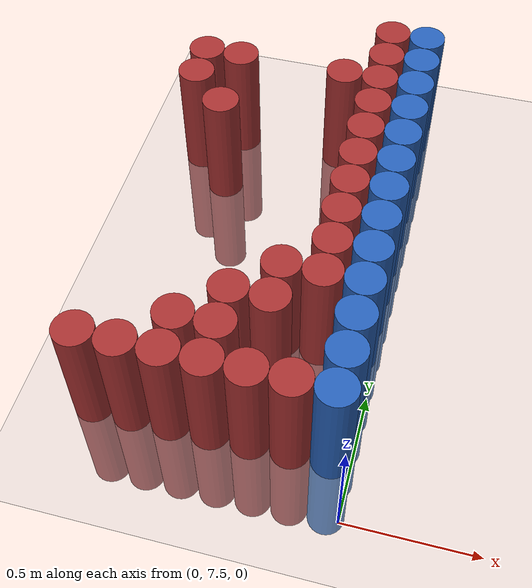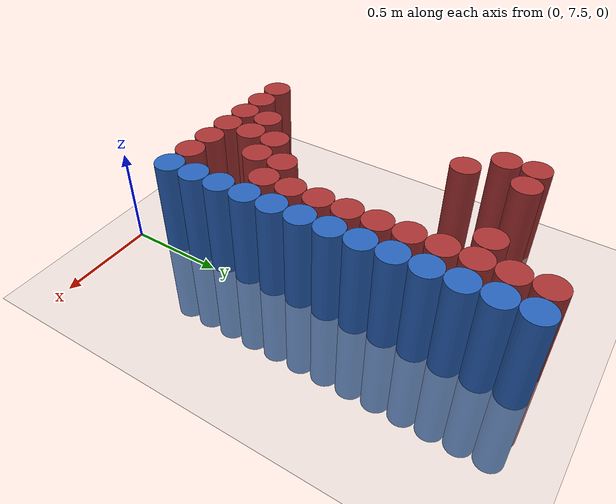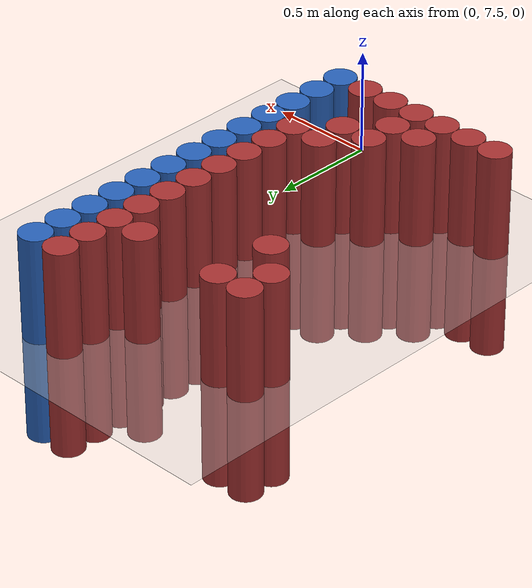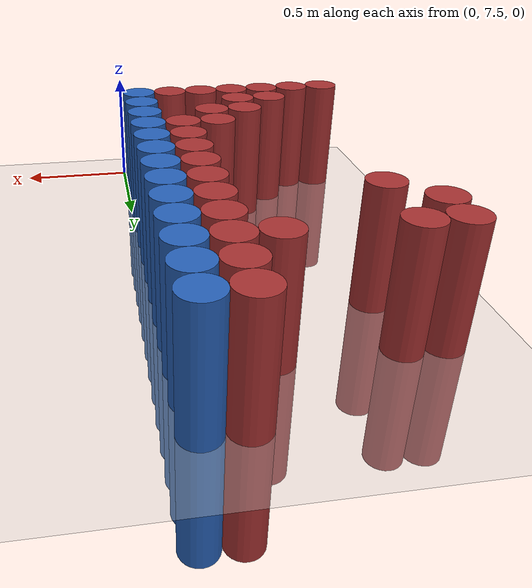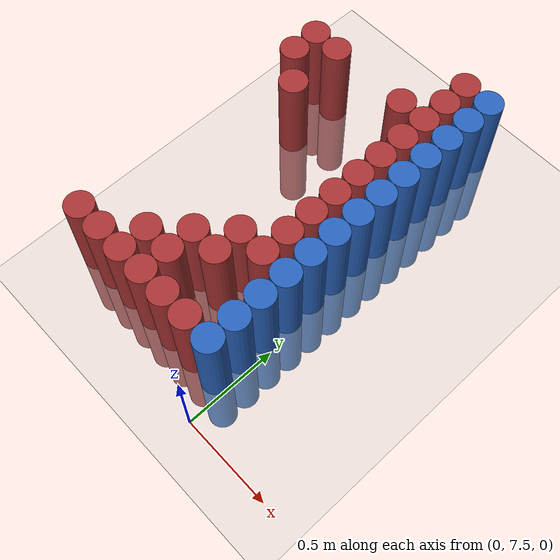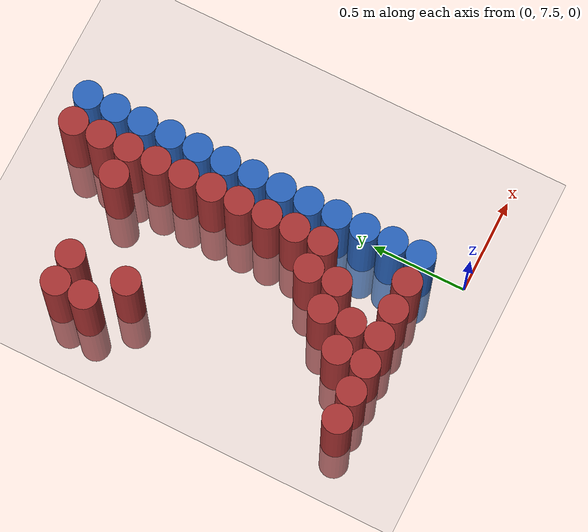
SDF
<sdf version="1.6">
 <world name="default">
  <model name="ground_plane">
   <static>1</static>
   <link name="link">
    <collision name="collision">
     <geometry><plane><normal>0 0 1</normal><size>100 100</size></plane></geometry>
     <surface><friction><ode><mu>100</mu><mu2>50</mu2></ode></friction></surface>
    </collision>
    <visual name="visual">
     <cast_shadows>0</cast_shadows>
     <geometry><plane><normal>0 0 1</normal><size>100 100</size></plane></geometry>
     <material>
      <script><uri>file://media/materials/scripts/gazebo.material</uri><name>Gazebo/Grey</name></script>
     </material>
    </visual>
   </link>
  </model>
  <model name="unit_cylinder_222">
   <static>1</static>
   <pose>-0.975000 7.725000 0.000000 0.000000 0.000000 0.000000</pose>
   <link name="link">
    <inertial>
     <mass>1</mass>
     <inertia><ixx>0.145833</ixx><ixy>0</ixy><ixz>0</ixz><iyy>0.145833</iyy><iyz>0</iyz><izz>0.125</izz></inertia>
    </inertial>
    <collision name="collision">
     <geometry><cylinder><radius>0.075000</radius><length>1</length></cylinder></geometry>
    </collision>
    <visual name="visual">
     <geometry><cylinder><radius>0.075000</radius><length>1</length></cylinder></geometry>
     <material>
      <ambient>0.648000 0.192000 0.192000 1</ambient>
      <diffuse>0.648000 0.192000 0.192000 1</diffuse>
     </material>
     <material>
      <script><name>Gazebo/Grey</name><uri>file://media/materials/scripts/gazebo.material</uri></script>
     </material>
    </visual>
    <sensor name="sensor_contact" type="contact"><contact><collision>collision</collision></contact></sensor>
   </link>
   <plugin filename="gz-sim-touchplugin-system" name="gz::sim::systems::TouchPlugin">
    <target>robot</target>
    <namespace>robot</namespace>
    <time>0.001</time>
    <enabled>true</enabled>
   </plugin>
  </model>
  <model name="unit_cylinder_223">
   <static>1</static>
   <pose>-0.975000 9.075000 0.000000 0.000000 0.000000 0.000000</pose>
   <link name="link">
    <inertial>
     <mass>1</mass>
     <inertia><ixx>0.145833</ixx><ixy>0</ixy><ixz>0</ixz><iyy>0.145833</iyy><iyz>0</iyz><izz>0.125</izz></inertia>
    </inertial>
    <collision name="collision">
     <geometry><cylinder><radius>0.075000</radius><length>1</length></cylinder></geometry>
    </collision>
    <visual name="visual">
     <geometry><cylinder><radius>0.075000</radius><length>1</length></cylinder></geometry>
     <material>
      <ambient>0.648000 0.192000 0.192000 1</ambient>
      <diffuse>0.648000 0.192000 0.192000 1</diffuse>
     </material>
     <material>
      <script><name>Gazebo/Grey</name><uri>file://media/materials/scripts/gazebo.material</uri></script>
     </material>
    </visual>
    <sensor name="sensor_contact" type="contact"><contact><collision>collision</collision></contact></sensor>
   </link>
   <plugin filename="gz-sim-touchplugin-system" name="gz::sim::systems::TouchPlugin">
    <target>robot</target>
    <namespace>robot</namespace>
    <time>0.001</time>
    <enabled>true</enabled>
   </plugin>
  </model>
  <model name="unit_cylinder_224">
   <static>1</static>
   <pose>-0.975000 9.225000 0.000000 0.000000 0.000000 0.000000</pose>
   <link name="link">
    <inertial>
     <mass>1</mass>
     <inertia><ixx>0.145833</ixx><ixy>0</ixy><ixz>0</ixz><iyy>0.145833</iyy><iyz>0</iyz><izz>0.125</izz></inertia>
    </inertial>
    <collision name="collision">
     <geometry><cylinder><radius>0.075000</radius><length>1</length></cylinder></geometry>
    </collision>
    <visual name="visual">
     <geometry><cylinder><radius>0.075000</radius><length>1</length></cylinder></geometry>
     <material>
      <ambient>0.648000 0.192000 0.192000 1</ambient>
      <diffuse>0.648000 0.192000 0.192000 1</diffuse>
     </material>
     <material>
      <script><name>Gazebo/Grey</name><uri>file://media/materials/scripts/gazebo.material</uri></script>
     </material>
    </visual>
    <sensor name="sensor_contact" type="contact"><contact><collision>collision</collision></contact></sensor>
   </link>
   <plugin filename="gz-sim-touchplugin-system" name="gz::sim::systems::TouchPlugin">
    <target>robot</target>
    <namespace>robot</namespace>
    <time>0.001</time>
    <enabled>true</enabled>
   </plugin>
  </model>
  <model name="unit_cylinder_228">
   <static>1</static>
   <pose>-0.825000 7.725000 0.000000 0.000000 0.000000 0.000000</pose>
   <link name="link">
    <inertial>
     <mass>1</mass>
     <inertia><ixx>0.145833</ixx><ixy>0</ixy><ixz>0</ixz><iyy>0.145833</iyy><iyz>0</iyz><izz>0.125</izz></inertia>
    </inertial>
    <collision name="collision">
     <geometry><cylinder><radius>0.075000</radius><length>1</length></cylinder></geometry>
    </collision>
    <visual name="visual">
     <geometry><cylinder><radius>0.075000</radius><length>1</length></cylinder></geometry>
     <material>
      <ambient>0.648000 0.192000 0.192000 1</ambient>
      <diffuse>0.648000 0.192000 0.192000 1</diffuse>
     </material>
     <material>
      <script><name>Gazebo/Grey</name><uri>file://media/materials/scripts/gazebo.material</uri></script>
     </material>
    </visual>
    <sensor name="sensor_contact" type="contact"><contact><collision>collision</collision></contact></sensor>
   </link>
   <plugin filename="gz-sim-touchplugin-system" name="gz::sim::systems::TouchPlugin">
    <target>robot</target>
    <namespace>robot</namespace>
    <time>0.001</time>
    <enabled>true</enabled>
   </plugin>
  </model>
  <model name="unit_cylinder_229">
   <static>1</static>
   <pose>-0.825000 8.925000 0.000000 0.000000 0.000000 0.000000</pose>
   <link name="link">
    <inertial>
     <mass>1</mass>
     <inertia><ixx>0.145833</ixx><ixy>0</ixy><ixz>0</ixz><iyy>0.145833</iyy><iyz>0</iyz><izz>0.125</izz></inertia>
    </inertial>
    <collision name="collision">
     <geometry><cylinder><radius>0.075000</radius><length>1</length></cylinder></geometry>
    </collision>
    <visual name="visual">
     <geometry><cylinder><radius>0.075000</radius><length>1</length></cylinder></geometry>
     <material>
      <ambient>0.648000 0.192000 0.192000 1</ambient>
      <diffuse>0.648000 0.192000 0.192000 1</diffuse>
     </material>
     <material>
      <script><name>Gazebo/Grey</name><uri>file://media/materials/scripts/gazebo.material</uri></script>
     </material>
    </visual>
    <sensor name="sensor_contact" type="contact"><contact><collision>collision</collision></contact></sensor>
   </link>
   <plugin filename="gz-sim-touchplugin-system" name="gz::sim::systems::TouchPlugin">
    <target>robot</target>
    <namespace>robot</namespace>
    <time>0.001</time>
    <enabled>true</enabled>
   </plugin>
  </model>
  <model name="unit_cylinder_230">
   <static>1</static>
   <pose>-0.825000 9.225000 0.000000 0.000000 0.000000 0.000000</pose>
   <link name="link">
    <inertial>
     <mass>1</mass>
     <inertia><ixx>0.145833</ixx><ixy>0</ixy><ixz>0</ixz><iyy>0.145833</iyy><iyz>0</iyz><izz>0.125</izz></inertia>
    </inertial>
    <collision name="collision">
     <geometry><cylinder><radius>0.075000</radius><length>1</length></cylinder></geometry>
    </collision>
    <visual name="visual">
     <geometry><cylinder><radius>0.075000</radius><length>1</length></cylinder></geometry>
     <material>
      <ambient>0.648000 0.192000 0.192000 1</ambient>
      <diffuse>0.648000 0.192000 0.192000 1</diffuse>
     </material>
     <material>
      <script><name>Gazebo/Grey</name><uri>file://media/materials/scripts/gazebo.material</uri></script>
     </material>
    </visual>
    <sensor name="sensor_contact" type="contact"><contact><collision>collision</collision></contact></sensor>
   </link>
   <plugin filename="gz-sim-touchplugin-system" name="gz::sim::systems::TouchPlugin">
    <target>robot</target>
    <namespace>robot</namespace>
    <time>0.001</time>
    <enabled>true</enabled>
   </plugin>
  </model>
  <model name="unit_cylinder_239">
   <static>1</static>
   <pose>-0.675000 7.725000 0.000000 0.000000 0.000000 0.000000</pose>
   <link name="link">
    <inertial>
     <mass>1</mass>
     <inertia><ixx>0.145833</ixx><ixy>0</ixy><ixz>0</ixz><iyy>0.145833</iyy><iyz>0</iyz><izz>0.125</izz></inertia>
    </inertial>
    <collision name="collision">
     <geometry><cylinder><radius>0.075000</radius><length>1</length></cylinder></geometry>
    </collision>
    <visual name="visual">
     <geometry><cylinder><radius>0.075000</radius><length>1</length></cylinder></geometry>
     <material>
      <ambient>0.648000 0.192000 0.192000 1</ambient>
      <diffuse>0.648000 0.192000 0.192000 1</diffuse>
     </material>
     <material>
      <script><name>Gazebo/Grey</name><uri>file://media/materials/scripts/gazebo.material</uri></script>
     </material>
    </visual>
    <sensor name="sensor_contact" type="contact"><contact><collision>collision</collision></contact></sensor>
   </link>
   <plugin filename="gz-sim-touchplugin-system" name="gz::sim::systems::TouchPlugin">
    <target>robot</target>
    <namespace>robot</namespace>
    <time>0.001</time>
    <enabled>true</enabled>
   </plugin>
  </model>
  <model name="unit_cylinder_240">
   <static>1</static>
   <pose>-0.675000 7.875000 0.000000 0.000000 0.000000 0.000000</pose>
   <link name="link">
    <inertial>
     <mass>1</mass>
     <inertia><ixx>0.145833</ixx><ixy>0</ixy><ixz>0</ixz><iyy>0.145833</iyy><iyz>0</iyz><izz>0.125</izz></inertia>
    </inertial>
    <collision name="collision">
     <geometry><cylinder><radius>0.075000</radius><length>1</length></cylinder></geometry>
    </collision>
    <visual name="visual">
     <geometry><cylinder><radius>0.075000</radius><length>1</length></cylinder></geometry>
     <material>
      <ambient>0.648000 0.192000 0.192000 1</ambient>
      <diffuse>0.648000 0.192000 0.192000 1</diffuse>
     </material>
     <material>
      <script><name>Gazebo/Grey</name><uri>file://media/materials/scripts/gazebo.material</uri></script>
     </material>
    </visual>
    <sensor name="sensor_contact" type="contact"><contact><collision>collision</collision></contact></sensor>
   </link>
   <plugin filename="gz-sim-touchplugin-system" name="gz::sim::systems::TouchPlugin">
    <target>robot</target>
    <namespace>robot</namespace>
    <time>0.001</time>
    <enabled>true</enabled>
   </plugin>
  </model>
  <model name="unit_cylinder_248">
   <static>1</static>
   <pose>-0.525000 7.725000 0.000000 0.000000 0.000000 0.000000</pose>
   <link name="link">
    <inertial>
     <mass>1</mass>
     <inertia><ixx>0.145833</ixx><ixy>0</ixy><ixz>0</ixz><iyy>0.145833</iyy><iyz>0</iyz><izz>0.125</izz></inertia>
    </inertial>
    <collision name="collision">
     <geometry><cylinder><radius>0.075000</radius><length>1</length></cylinder></geometry>
    </collision>
    <visual name="visual">
     <geometry><cylinder><radius>0.075000</radius><length>1</length></cylinder></geometry>
     <material>
      <ambient>0.648000 0.192000 0.192000 1</ambient>
      <diffuse>0.648000 0.192000 0.192000 1</diffuse>
     </material>
     <material>
      <script><name>Gazebo/Grey</name><uri>file://media/materials/scripts/gazebo.material</uri></script>
     </material>
    </visual>
    <sensor name="sensor_contact" type="contact"><contact><collision>collision</collision></contact></sensor>
   </link>
   <plugin filename="gz-sim-touchplugin-system" name="gz::sim::systems::TouchPlugin">
    <target>robot</target>
    <namespace>robot</namespace>
    <time>0.001</time>
    <enabled>true</enabled>
   </plugin>
  </model>
  <model name="unit_cylinder_249">
   <static>1</static>
   <pose>-0.525000 7.875000 0.000000 0.000000 0.000000 0.000000</pose>
   <link name="link">
    <inertial>
     <mass>1</mass>
     <inertia><ixx>0.145833</ixx><ixy>0</ixy><ixz>0</ixz><iyy>0.145833</iyy><iyz>0</iyz><izz>0.125</izz></inertia>
    </inertial>
    <collision name="collision">
     <geometry><cylinder><radius>0.075000</radius><length>1</length></cylinder></geometry>
    </collision>
    <visual name="visual">
     <geometry><cylinder><radius>0.075000</radius><length>1</length></cylinder></geometry>
     <material>
      <ambient>0.648000 0.192000 0.192000 1</ambient>
      <diffuse>0.648000 0.192000 0.192000 1</diffuse>
     </material>
     <material>
      <script><name>Gazebo/Grey</name><uri>file://media/materials/scripts/gazebo.material</uri></script>
     </material>
    </visual>
    <sensor name="sensor_contact" type="contact"><contact><collision>collision</collision></contact></sensor>
   </link>
   <plugin filename="gz-sim-touchplugin-system" name="gz::sim::systems::TouchPlugin">
    <target>robot</target>
    <namespace>robot</namespace>
    <time>0.001</time>
    <enabled>true</enabled>
   </plugin>
  </model>
  <model name="unit_cylinder_250">
   <static>1</static>
   <pose>-0.525000 8.025000 0.000000 0.000000 0.000000 0.000000</pose>
   <link name="link">
    <inertial>
     <mass>1</mass>
     <inertia><ixx>0.145833</ixx><ixy>0</ixy><ixz>0</ixz><iyy>0.145833</iyy><iyz>0</iyz><izz>0.125</izz></inertia>
    </inertial>
    <collision name="collision">
     <geometry><cylinder><radius>0.075000</radius><length>1</length></cylinder></geometry>
    </collision>
    <visual name="visual">
     <geometry><cylinder><radius>0.075000</radius><length>1</length></cylinder></geometry>
     <material>
      <ambient>0.648000 0.192000 0.192000 1</ambient>
      <diffuse>0.648000 0.192000 0.192000 1</diffuse>
     </material>
     <material>
      <script><name>Gazebo/Grey</name><uri>file://media/materials/scripts/gazebo.material</uri></script>
     </material>
    </visual>
    <sensor name="sensor_contact" type="contact"><contact><collision>collision</collision></contact></sensor>
   </link>
   <plugin filename="gz-sim-touchplugin-system" name="gz::sim::systems::TouchPlugin">
    <target>robot</target>
    <namespace>robot</namespace>
    <time>0.001</time>
    <enabled>true</enabled>
   </plugin>
  </model>
  <model name="unit_cylinder_256">
   <static>1</static>
   <pose>-0.375000 7.725000 0.000000 0.000000 0.000000 0.000000</pose>
   <link name="link">
    <inertial>
     <mass>1</mass>
     <inertia><ixx>0.145833</ixx><ixy>0</ixy><ixz>0</ixz><iyy>0.145833</iyy><iyz>0</iyz><izz>0.125</izz></inertia>
    </inertial>
    <collision name="collision">
     <geometry><cylinder><radius>0.075000</radius><length>1</length></cylinder></geometry>
    </collision>
    <visual name="visual">
     <geometry><cylinder><radius>0.075000</radius><length>1</length></cylinder></geometry>
     <material>
      <ambient>0.648000 0.192000 0.192000 1</ambient>
      <diffuse>0.648000 0.192000 0.192000 1</diffuse>
     </material>
     <material>
      <script><name>Gazebo/Grey</name><uri>file://media/materials/scripts/gazebo.material</uri></script>
     </material>
    </visual>
    <sensor name="sensor_contact" type="contact"><contact><collision>collision</collision></contact></sensor>
   </link>
   <plugin filename="gz-sim-touchplugin-system" name="gz::sim::systems::TouchPlugin">
    <target>robot</target>
    <namespace>robot</namespace>
    <time>0.001</time>
    <enabled>true</enabled>
   </plugin>
  </model>
  <model name="unit_cylinder_257">
   <static>1</static>
   <pose>-0.375000 8.025000 0.000000 0.000000 0.000000 0.000000</pose>
   <link name="link">
    <inertial>
     <mass>1</mass>
     <inertia><ixx>0.145833</ixx><ixy>0</ixy><ixz>0</ixz><iyy>0.145833</iyy><iyz>0</iyz><izz>0.125</izz></inertia>
    </inertial>
    <collision name="collision">
     <geometry><cylinder><radius>0.075000</radius><length>1</length></cylinder></geometry>
    </collision>
    <visual name="visual">
     <geometry><cylinder><radius>0.075000</radius><length>1</length></cylinder></geometry>
     <material>
      <ambient>0.648000 0.192000 0.192000 1</ambient>
      <diffuse>0.648000 0.192000 0.192000 1</diffuse>
     </material>
     <material>
      <script><name>Gazebo/Grey</name><uri>file://media/materials/scripts/gazebo.material</uri></script>
     </material>
    </visual>
    <sensor name="sensor_contact" type="contact"><contact><collision>collision</collision></contact></sensor>
   </link>
   <plugin filename="gz-sim-touchplugin-system" name="gz::sim::systems::TouchPlugin">
    <target>robot</target>
    <namespace>robot</namespace>
    <time>0.001</time>
    <enabled>true</enabled>
   </plugin>
  </model>
  <model name="unit_cylinder_258">
   <static>1</static>
   <pose>-0.375000 8.175000 0.000000 0.000000 0.000000 0.000000</pose>
   <link name="link">
    <inertial>
     <mass>1</mass>
     <inertia><ixx>0.145833</ixx><ixy>0</ixy><ixz>0</ixz><iyy>0.145833</iyy><iyz>0</iyz><izz>0.125</izz></inertia>
    </inertial>
    <collision name="collision">
     <geometry><cylinder><radius>0.075000</radius><length>1</length></cylinder></geometry>
    </collision>
    <visual name="visual">
     <geometry><cylinder><radius>0.075000</radius><length>1</length></cylinder></geometry>
     <material>
      <ambient>0.648000 0.192000 0.192000 1</ambient>
      <diffuse>0.648000 0.192000 0.192000 1</diffuse>
     </material>
     <material>
      <script><name>Gazebo/Grey</name><uri>file://media/materials/scripts/gazebo.material</uri></script>
     </material>
    </visual>
    <sensor name="sensor_contact" type="contact"><contact><collision>collision</collision></contact></sensor>
   </link>
   <plugin filename="gz-sim-touchplugin-system" name="gz::sim::systems::TouchPlugin">
    <target>robot</target>
    <namespace>robot</namespace>
    <time>0.001</time>
    <enabled>true</enabled>
   </plugin>
  </model>
  <model name="unit_cylinder_259">
   <static>1</static>
   <pose>-0.375000 9.225000 0.000000 0.000000 0.000000 0.000000</pose>
   <link name="link">
    <inertial>
     <mass>1</mass>
     <inertia><ixx>0.145833</ixx><ixy>0</ixy><ixz>0</ixz><iyy>0.145833</iyy><iyz>0</iyz><izz>0.125</izz></inertia>
    </inertial>
    <collision name="collision">
     <geometry><cylinder><radius>0.075000</radius><length>1</length></cylinder></geometry>
    </collision>
    <visual name="visual">
     <geometry><cylinder><radius>0.075000</radius><length>1</length></cylinder></geometry>
     <material>
      <ambient>0.648000 0.192000 0.192000 1</ambient>
      <diffuse>0.648000 0.192000 0.192000 1</diffuse>
     </material>
     <material>
      <script><name>Gazebo/Grey</name><uri>file://media/materials/scripts/gazebo.material</uri></script>
     </material>
    </visual>
    <sensor name="sensor_contact" type="contact"><contact><collision>collision</collision></contact></sensor>
   </link>
   <plugin filename="gz-sim-touchplugin-system" name="gz::sim::systems::TouchPlugin">
    <target>robot</target>
    <namespace>robot</namespace>
    <time>0.001</time>
    <enabled>true</enabled>
   </plugin>
  </model>
  <model name="unit_cylinder_269">
   <static>1</static>
   <pose>-0.225000 7.725000 0.000000 0.000000 0.000000 0.000000</pose>
   <link name="link">
    <inertial>
     <mass>1</mass>
     <inertia><ixx>0.145833</ixx><ixy>0</ixy><ixz>0</ixz><iyy>0.145833</iyy><iyz>0</iyz><izz>0.125</izz></inertia>
    </inertial>
    <collision name="collision">
     <geometry><cylinder><radius>0.075000</radius><length>1</length></cylinder></geometry>
    </collision>
    <visual name="visual">
     <geometry><cylinder><radius>0.075000</radius><length>1</length></cylinder></geometry>
     <material>
      <ambient>0.648000 0.192000 0.192000 1</ambient>
      <diffuse>0.648000 0.192000 0.192000 1</diffuse>
     </material>
     <material>
      <script><name>Gazebo/Grey</name><uri>file://media/materials/scripts/gazebo.material</uri></script>
     </material>
    </visual>
    <sensor name="sensor_contact" type="contact"><contact><collision>collision</collision></contact></sensor>
   </link>
   <plugin filename="gz-sim-touchplugin-system" name="gz::sim::systems::TouchPlugin">
    <target>robot</target>
    <namespace>robot</namespace>
    <time>0.001</time>
    <enabled>true</enabled>
   </plugin>
  </model>
  <model name="unit_cylinder_270">
   <static>1</static>
   <pose>-0.225000 8.175000 0.000000 0.000000 0.000000 0.000000</pose>
   <link name="link">
    <inertial>
     <mass>1</mass>
     <inertia><ixx>0.145833</ixx><ixy>0</ixy><ixz>0</ixz><iyy>0.145833</iyy><iyz>0</iyz><izz>0.125</izz></inertia>
    </inertial>
    <collision name="collision">
     <geometry><cylinder><radius>0.075000</radius><length>1</length></cylinder></geometry>
    </collision>
    <visual name="visual">
     <geometry><cylinder><radius>0.075000</radius><length>1</length></cylinder></geometry>
     <material>
      <ambient>0.648000 0.192000 0.192000 1</ambient>
      <diffuse>0.648000 0.192000 0.192000 1</diffuse>
     </material>
     <material>
      <script><name>Gazebo/Grey</name><uri>file://media/materials/scripts/gazebo.material</uri></script>
     </material>
    </visual>
    <sensor name="sensor_contact" type="contact"><contact><collision>collision</collision></contact></sensor>
   </link>
   <plugin filename="gz-sim-touchplugin-system" name="gz::sim::systems::TouchPlugin">
    <target>robot</target>
    <namespace>robot</namespace>
    <time>0.001</time>
    <enabled>true</enabled>
   </plugin>
  </model>
  <model name="unit_cylinder_271">
   <static>1</static>
   <pose>-0.225000 8.325000 0.000000 0.000000 0.000000 0.000000</pose>
   <link name="link">
    <inertial>
     <mass>1</mass>
     <inertia><ixx>0.145833</ixx><ixy>0</ixy><ixz>0</ixz><iyy>0.145833</iyy><iyz>0</iyz><izz>0.125</izz></inertia>
    </inertial>
    <collision name="collision">
     <geometry><cylinder><radius>0.075000</radius><length>1</length></cylinder></geometry>
    </collision>
    <visual name="visual">
     <geometry><cylinder><radius>0.075000</radius><length>1</length></cylinder></geometry>
     <material>
      <ambient>0.648000 0.192000 0.192000 1</ambient>
      <diffuse>0.648000 0.192000 0.192000 1</diffuse>
     </material>
     <material>
      <script><name>Gazebo/Grey</name><uri>file://media/materials/scripts/gazebo.material</uri></script>
     </material>
    </visual>
    <sensor name="sensor_contact" type="contact"><contact><collision>collision</collision></contact></sensor>
   </link>
   <plugin filename="gz-sim-touchplugin-system" name="gz::sim::systems::TouchPlugin">
    <target>robot</target>
    <namespace>robot</namespace>
    <time>0.001</time>
    <enabled>true</enabled>
   </plugin>
  </model>
  <model name="unit_cylinder_272">
   <static>1</static>
   <pose>-0.225000 8.475000 0.000000 0.000000 0.000000 0.000000</pose>
   <link name="link">
    <inertial>
     <mass>1</mass>
     <inertia><ixx>0.145833</ixx><ixy>0</ixy><ixz>0</ixz><iyy>0.145833</iyy><iyz>0</iyz><izz>0.125</izz></inertia>
    </inertial>
    <collision name="collision">
     <geometry><cylinder><radius>0.075000</radius><length>1</length></cylinder></geometry>
    </collision>
    <visual name="visual">
     <geometry><cylinder><radius>0.075000</radius><length>1</length></cylinder></geometry>
     <material>
      <ambient>0.648000 0.192000 0.192000 1</ambient>
      <diffuse>0.648000 0.192000 0.192000 1</diffuse>
     </material>
     <material>
      <script><name>Gazebo/Grey</name><uri>file://media/materials/scripts/gazebo.material</uri></script>
     </material>
    </visual>
    <sensor name="sensor_contact" type="contact"><contact><collision>collision</collision></contact></sensor>
   </link>
   <plugin filename="gz-sim-touchplugin-system" name="gz::sim::systems::TouchPlugin">
    <target>robot</target>
    <namespace>robot</namespace>
    <time>0.001</time>
    <enabled>true</enabled>
   </plugin>
  </model>
  <model name="unit_cylinder_273">
   <static>1</static>
   <pose>-0.225000 8.625000 0.000000 0.000000 0.000000 0.000000</pose>
   <link name="link">
    <inertial>
     <mass>1</mass>
     <inertia><ixx>0.145833</ixx><ixy>0</ixy><ixz>0</ixz><iyy>0.145833</iyy><iyz>0</iyz><izz>0.125</izz></inertia>
    </inertial>
    <collision name="collision">
     <geometry><cylinder><radius>0.075000</radius><length>1</length></cylinder></geometry>
    </collision>
    <visual name="visual">
     <geometry><cylinder><radius>0.075000</radius><length>1</length></cylinder></geometry>
     <material>
      <ambient>0.648000 0.192000 0.192000 1</ambient>
      <diffuse>0.648000 0.192000 0.192000 1</diffuse>
     </material>
     <material>
      <script><name>Gazebo/Grey</name><uri>file://media/materials/scripts/gazebo.material</uri></script>
     </material>
    </visual>
    <sensor name="sensor_contact" type="contact"><contact><collision>collision</collision></contact></sensor>
   </link>
   <plugin filename="gz-sim-touchplugin-system" name="gz::sim::systems::TouchPlugin">
    <target>robot</target>
    <namespace>robot</namespace>
    <time>0.001</time>
    <enabled>true</enabled>
   </plugin>
  </model>
  <model name="unit_cylinder_274">
   <static>1</static>
   <pose>-0.225000 8.775000 0.000000 0.000000 0.000000 0.000000</pose>
   <link name="link">
    <inertial>
     <mass>1</mass>
     <inertia><ixx>0.145833</ixx><ixy>0</ixy><ixz>0</ixz><iyy>0.145833</iyy><iyz>0</iyz><izz>0.125</izz></inertia>
    </inertial>
    <collision name="collision">
     <geometry><cylinder><radius>0.075000</radius><length>1</length></cylinder></geometry>
    </collision>
    <visual name="visual">
     <geometry><cylinder><radius>0.075000</radius><length>1</length></cylinder></geometry>
     <material>
      <ambient>0.648000 0.192000 0.192000 1</ambient>
      <diffuse>0.648000 0.192000 0.192000 1</diffuse>
     </material>
     <material>
      <script><name>Gazebo/Grey</name><uri>file://media/materials/scripts/gazebo.material</uri></script>
     </material>
    </visual>
    <sensor name="sensor_contact" type="contact"><contact><collision>collision</collision></contact></sensor>
   </link>
   <plugin filename="gz-sim-touchplugin-system" name="gz::sim::systems::TouchPlugin">
    <target>robot</target>
    <namespace>robot</namespace>
    <time>0.001</time>
    <enabled>true</enabled>
   </plugin>
  </model>
  <model name="unit_cylinder_275">
   <static>1</static>
   <pose>-0.225000 8.925000 0.000000 0.000000 0.000000 0.000000</pose>
   <link name="link">
    <inertial>
     <mass>1</mass>
     <inertia><ixx>0.145833</ixx><ixy>0</ixy><ixz>0</ixz><iyy>0.145833</iyy><iyz>0</iyz><izz>0.125</izz></inertia>
    </inertial>
    <collision name="collision">
     <geometry><cylinder><radius>0.075000</radius><length>1</length></cylinder></geometry>
    </collision>
    <visual name="visual">
     <geometry><cylinder><radius>0.075000</radius><length>1</length></cylinder></geometry>
     <material>
      <ambient>0.648000 0.192000 0.192000 1</ambient>
      <diffuse>0.648000 0.192000 0.192000 1</diffuse>
     </material>
     <material>
      <script><name>Gazebo/Grey</name><uri>file://media/materials/scripts/gazebo.material</uri></script>
     </material>
    </visual>
    <sensor name="sensor_contact" type="contact"><contact><collision>collision</collision></contact></sensor>
   </link>
   <plugin filename="gz-sim-touchplugin-system" name="gz::sim::systems::TouchPlugin">
    <target>robot</target>
    <namespace>robot</namespace>
    <time>0.001</time>
    <enabled>true</enabled>
   </plugin>
  </model>
  <model name="unit_cylinder_276">
   <static>1</static>
   <pose>-0.225000 9.075000 0.000000 0.000000 0.000000 0.000000</pose>
   <link name="link">
    <inertial>
     <mass>1</mass>
     <inertia><ixx>0.145833</ixx><ixy>0</ixy><ixz>0</ixz><iyy>0.145833</iyy><iyz>0</iyz><izz>0.125</izz></inertia>
    </inertial>
    <collision name="collision">
     <geometry><cylinder><radius>0.075000</radius><length>1</length></cylinder></geometry>
    </collision>
    <visual name="visual">
     <geometry><cylinder><radius>0.075000</radius><length>1</length></cylinder></geometry>
     <material>
      <ambient>0.648000 0.192000 0.192000 1</ambient>
      <diffuse>0.648000 0.192000 0.192000 1</diffuse>
     </material>
     <material>
      <script><name>Gazebo/Grey</name><uri>file://media/materials/scripts/gazebo.material</uri></script>
     </material>
    </visual>
    <sensor name="sensor_contact" type="contact"><contact><collision>collision</collision></contact></sensor>
   </link>
   <plugin filename="gz-sim-touchplugin-system" name="gz::sim::systems::TouchPlugin">
    <target>robot</target>
    <namespace>robot</namespace>
    <time>0.001</time>
    <enabled>true</enabled>
   </plugin>
  </model>
  <model name="unit_cylinder_277">
   <static>1</static>
   <pose>-0.225000 9.225000 0.000000 0.000000 0.000000 0.000000</pose>
   <link name="link">
    <inertial>
     <mass>1</mass>
     <inertia><ixx>0.145833</ixx><ixy>0</ixy><ixz>0</ixz><iyy>0.145833</iyy><iyz>0</iyz><izz>0.125</izz></inertia>
    </inertial>
    <collision name="collision">
     <geometry><cylinder><radius>0.075000</radius><length>1</length></cylinder></geometry>
    </collision>
    <visual name="visual">
     <geometry><cylinder><radius>0.075000</radius><length>1</length></cylinder></geometry>
     <material>
      <ambient>0.648000 0.192000 0.192000 1</ambient>
      <diffuse>0.648000 0.192000 0.192000 1</diffuse>
     </material>
     <material>
      <script><name>Gazebo/Grey</name><uri>file://media/materials/scripts/gazebo.material</uri></script>
     </material>
    </visual>
    <sensor name="sensor_contact" type="contact"><contact><collision>collision</collision></contact></sensor>
   </link>
   <plugin filename="gz-sim-touchplugin-system" name="gz::sim::systems::TouchPlugin">
    <target>robot</target>
    <namespace>robot</namespace>
    <time>0.001</time>
    <enabled>true</enabled>
   </plugin>
  </model>
  <model name="unit_cylinder_278">
   <static>1</static>
   <pose>-0.225000 9.375000 0.000000 0.000000 0.000000 0.000000</pose>
   <link name="link">
    <inertial>
     <mass>1</mass>
     <inertia><ixx>0.145833</ixx><ixy>0</ixy><ixz>0</ixz><iyy>0.145833</iyy><iyz>0</iyz><izz>0.125</izz></inertia>
    </inertial>
    <collision name="collision">
     <geometry><cylinder><radius>0.075000</radius><length>1</length></cylinder></geometry>
    </collision>
    <visual name="visual">
     <geometry><cylinder><radius>0.075000</radius><length>1</length></cylinder></geometry>
     <material>
      <ambient>0.648000 0.192000 0.192000 1</ambient>
      <diffuse>0.648000 0.192000 0.192000 1</diffuse>
     </material>
     <material>
      <script><name>Gazebo/Grey</name><uri>file://media/materials/scripts/gazebo.material</uri></script>
     </material>
    </visual>
    <sensor name="sensor_contact" type="contact"><contact><collision>collision</collision></contact></sensor>
   </link>
   <plugin filename="gz-sim-touchplugin-system" name="gz::sim::systems::TouchPlugin">
    <target>robot</target>
    <namespace>robot</namespace>
    <time>0.001</time>
    <enabled>true</enabled>
   </plugin>
  </model>
  <model name="unit_cylinder_279">
   <static>1</static>
   <pose>-0.225000 9.525000 0.000000 0.000000 0.000000 0.000000</pose>
   <link name="link">
    <inertial>
     <mass>1</mass>
     <inertia><ixx>0.145833</ixx><ixy>0</ixy><ixz>0</ixz><iyy>0.145833</iyy><iyz>0</iyz><izz>0.125</izz></inertia>
    </inertial>
    <collision name="collision">
     <geometry><cylinder><radius>0.075000</radius><length>1</length></cylinder></geometry>
    </collision>
    <visual name="visual">
     <geometry><cylinder><radius>0.075000</radius><length>1</length></cylinder></geometry>
     <material>
      <ambient>0.648000 0.192000 0.192000 1</ambient>
      <diffuse>0.648000 0.192000 0.192000 1</diffuse>
     </material>
     <material>
      <script><name>Gazebo/Grey</name><uri>file://media/materials/scripts/gazebo.material</uri></script>
     </material>
    </visual>
    <sensor name="sensor_contact" type="contact"><contact><collision>collision</collision></contact></sensor>
   </link>
   <plugin filename="gz-sim-touchplugin-system" name="gz::sim::systems::TouchPlugin">
    <target>robot</target>
    <namespace>robot</namespace>
    <time>0.001</time>
    <enabled>true</enabled>
   </plugin>
  </model>
  <model name="unit_cylinder_297">
   <static>1</static>
   <pose>-0.075000 7.725000 0.000000 0.000000 0.000000 0.000000</pose>
   <link name="link">
    <inertial>
     <mass>1</mass>
     <inertia><ixx>0.145833</ixx><ixy>0</ixy><ixz>0</ixz><iyy>0.145833</iyy><iyz>0</iyz><izz>0.125</izz></inertia>
    </inertial>
    <collision name="collision">
     <geometry><cylinder><radius>0.075000</radius><length>1</length></cylinder></geometry>
    </collision>
    <visual name="visual">
     <geometry><cylinder><radius>0.075000</radius><length>1</length></cylinder></geometry>
     <material>
      <ambient>0.152000 0.379000 0.720000 1</ambient>
      <diffuse>0.152000 0.379000 0.720000 1</diffuse>
     </material>
     <material>
      <script><name>Gazebo/Grey</name><uri>file://media/materials/scripts/gazebo.material</uri></script>
     </material>
    </visual>
    <sensor name="sensor_contact" type="contact"><contact><collision>collision</collision></contact></sensor>
   </link>
   <plugin filename="gz-sim-touchplugin-system" name="gz::sim::systems::TouchPlugin">
    <target>robot</target>
    <namespace>robot</namespace>
    <time>0.001</time>
    <enabled>true</enabled>
   </plugin>
  </model>
  <model name="unit_cylinder_298">
   <static>1</static>
   <pose>-0.075000 7.875000 0.000000 0.000000 0.000000 0.000000</pose>
   <link name="link">
    <inertial>
     <mass>1</mass>
     <inertia><ixx>0.145833</ixx><ixy>0</ixy><ixz>0</ixz><iyy>0.145833</iyy><iyz>0</iyz><izz>0.125</izz></inertia>
    </inertial>
    <collision name="collision">
     <geometry><cylinder><radius>0.075000</radius><length>1</length></cylinder></geometry>
    </collision>
    <visual name="visual">
     <geometry><cylinder><radius>0.075000</radius><length>1</length></cylinder></geometry>
     <material>
      <ambient>0.152000 0.379000 0.720000 1</ambient>
      <diffuse>0.152000 0.379000 0.720000 1</diffuse>
     </material>
     <material>
      <script><name>Gazebo/Grey</name><uri>file://media/materials/scripts/gazebo.material</uri></script>
     </material>
    </visual>
    <sensor name="sensor_contact" type="contact"><contact><collision>collision</collision></contact></sensor>
   </link>
   <plugin filename="gz-sim-touchplugin-system" name="gz::sim::systems::TouchPlugin">
    <target>robot</target>
    <namespace>robot</namespace>
    <time>0.001</time>
    <enabled>true</enabled>
   </plugin>
  </model>
  <model name="unit_cylinder_299">
   <static>1</static>
   <pose>-0.075000 8.025000 0.000000 0.000000 0.000000 0.000000</pose>
   <link name="link">
    <inertial>
     <mass>1</mass>
     <inertia><ixx>0.145833</ixx><ixy>0</ixy><ixz>0</ixz><iyy>0.145833</iyy><iyz>0</iyz><izz>0.125</izz></inertia>
    </inertial>
    <collision name="collision">
     <geometry><cylinder><radius>0.075000</radius><length>1</length></cylinder></geometry>
    </collision>
    <visual name="visual">
     <geometry><cylinder><radius>0.075000</radius><length>1</length></cylinder></geometry>
     <material>
      <ambient>0.152000 0.379000 0.720000 1</ambient>
      <diffuse>0.152000 0.379000 0.720000 1</diffuse>
     </material>
     <material>
      <script><name>Gazebo/Grey</name><uri>file://media/materials/scripts/gazebo.material</uri></script>
     </material>
    </visual>
    <sensor name="sensor_contact" type="contact"><contact><collision>collision</collision></contact></sensor>
   </link>
   <plugin filename="gz-sim-touchplugin-system" name="gz::sim::systems::TouchPlugin">
    <target>robot</target>
    <namespace>robot</namespace>
    <time>0.001</time>
    <enabled>true</enabled>
   </plugin>
  </model>
  <model name="unit_cylinder_300">
   <static>1</static>
   <pose>-0.075000 8.175000 0.000000 0.000000 0.000000 0.000000</pose>
   <link name="link">
    <inertial>
     <mass>1</mass>
     <inertia><ixx>0.145833</ixx><ixy>0</ixy><ixz>0</ixz><iyy>0.145833</iyy><iyz>0</iyz><izz>0.125</izz></inertia>
    </inertial>
    <collision name="collision">
     <geometry><cylinder><radius>0.075000</radius><length>1</length></cylinder></geometry>
    </collision>
    <visual name="visual">
     <geometry><cylinder><radius>0.075000</radius><length>1</length></cylinder></geometry>
     <material>
      <ambient>0.152000 0.379000 0.720000 1</ambient>
      <diffuse>0.152000 0.379000 0.720000 1</diffuse>
     </material>
     <material>
      <script><name>Gazebo/Grey</name><uri>file://media/materials/scripts/gazebo.material</uri></script>
     </material>
    </visual>
    <sensor name="sensor_contact" type="contact"><contact><collision>collision</collision></contact></sensor>
   </link>
   <plugin filename="gz-sim-touchplugin-system" name="gz::sim::systems::TouchPlugin">
    <target>robot</target>
    <namespace>robot</namespace>
    <time>0.001</time>
    <enabled>true</enabled>
   </plugin>
  </model>
  <model name="unit_cylinder_301">
   <static>1</static>
   <pose>-0.075000 8.325000 0.000000 0.000000 0.000000 0.000000</pose>
   <link name="link">
    <inertial>
     <mass>1</mass>
     <inertia><ixx>0.145833</ixx><ixy>0</ixy><ixz>0</ixz><iyy>0.145833</iyy><iyz>0</iyz><izz>0.125</izz></inertia>
    </inertial>
    <collision name="collision">
     <geometry><cylinder><radius>0.075000</radius><length>1</length></cylinder></geometry>
    </collision>
    <visual name="visual">
     <geometry><cylinder><radius>0.075000</radius><length>1</length></cylinder></geometry>
     <material>
      <ambient>0.152000 0.379000 0.720000 1</ambient>
      <diffuse>0.152000 0.379000 0.720000 1</diffuse>
     </material>
     <material>
      <script><name>Gazebo/Grey</name><uri>file://media/materials/scripts/gazebo.material</uri></script>
     </material>
    </visual>
    <sensor name="sensor_contact" type="contact"><contact><collision>collision</collision></contact></sensor>
   </link>
   <plugin filename="gz-sim-touchplugin-system" name="gz::sim::systems::TouchPlugin">
    <target>robot</target>
    <namespace>robot</namespace>
    <time>0.001</time>
    <enabled>true</enabled>
   </plugin>
  </model>
  <model name="unit_cylinder_302">
   <static>1</static>
   <pose>-0.075000 8.475000 0.000000 0.000000 0.000000 0.000000</pose>
   <link name="link">
    <inertial>
     <mass>1</mass>
     <inertia><ixx>0.145833</ixx><ixy>0</ixy><ixz>0</ixz><iyy>0.145833</iyy><iyz>0</iyz><izz>0.125</izz></inertia>
    </inertial>
    <collision name="collision">
     <geometry><cylinder><radius>0.075000</radius><length>1</length></cylinder></geometry>
    </collision>
    <visual name="visual">
     <geometry><cylinder><radius>0.075000</radius><length>1</length></cylinder></geometry>
     <material>
      <ambient>0.152000 0.379000 0.720000 1</ambient>
      <diffuse>0.152000 0.379000 0.720000 1</diffuse>
     </material>
     <material>
      <script><name>Gazebo/Grey</name><uri>file://media/materials/scripts/gazebo.material</uri></script>
     </material>
    </visual>
    <sensor name="sensor_contact" type="contact"><contact><collision>collision</collision></contact></sensor>
   </link>
   <plugin filename="gz-sim-touchplugin-system" name="gz::sim::systems::TouchPlugin">
    <target>robot</target>
    <namespace>robot</namespace>
    <time>0.001</time>
    <enabled>true</enabled>
   </plugin>
  </model>
  <model name="unit_cylinder_303">
   <static>1</static>
   <pose>-0.075000 8.625000 0.000000 0.000000 0.000000 0.000000</pose>
   <link name="link">
    <inertial>
     <mass>1</mass>
     <inertia><ixx>0.145833</ixx><ixy>0</ixy><ixz>0</ixz><iyy>0.145833</iyy><iyz>0</iyz><izz>0.125</izz></inertia>
    </inertial>
    <collision name="collision">
     <geometry><cylinder><radius>0.075000</radius><length>1</length></cylinder></geometry>
    </collision>
    <visual name="visual">
     <geometry><cylinder><radius>0.075000</radius><length>1</length></cylinder></geometry>
     <material>
      <ambient>0.152000 0.379000 0.720000 1</ambient>
      <diffuse>0.152000 0.379000 0.720000 1</diffuse>
     </material>
     <material>
      <script><name>Gazebo/Grey</name><uri>file://media/materials/scripts/gazebo.material</uri></script>
     </material>
    </visual>
    <sensor name="sensor_contact" type="contact"><contact><collision>collision</collision></contact></sensor>
   </link>
   <plugin filename="gz-sim-touchplugin-system" name="gz::sim::systems::TouchPlugin">
    <target>robot</target>
    <namespace>robot</namespace>
    <time>0.001</time>
    <enabled>true</enabled>
   </plugin>
  </model>
  <model name="unit_cylinder_304">
   <static>1</static>
   <pose>-0.075000 8.775000 0.000000 0.000000 0.000000 0.000000</pose>
   <link name="link">
    <inertial>
     <mass>1</mass>
     <inertia><ixx>0.145833</ixx><ixy>0</ixy><ixz>0</ixz><iyy>0.145833</iyy><iyz>0</iyz><izz>0.125</izz></inertia>
    </inertial>
    <collision name="collision">
     <geometry><cylinder><radius>0.075000</radius><length>1</length></cylinder></geometry>
    </collision>
    <visual name="visual">
     <geometry><cylinder><radius>0.075000</radius><length>1</length></cylinder></geometry>
     <material>
      <ambient>0.152000 0.379000 0.720000 1</ambient>
      <diffuse>0.152000 0.379000 0.720000 1</diffuse>
     </material>
     <material>
      <script><name>Gazebo/Grey</name><uri>file://media/materials/scripts/gazebo.material</uri></script>
     </material>
    </visual>
    <sensor name="sensor_contact" type="contact"><contact><collision>collision</collision></contact></sensor>
   </link>
   <plugin filename="gz-sim-touchplugin-system" name="gz::sim::systems::TouchPlugin">
    <target>robot</target>
    <namespace>robot</namespace>
    <time>0.001</time>
    <enabled>true</enabled>
   </plugin>
  </model>
  <model name="unit_cylinder_305">
   <static>1</static>
   <pose>-0.075000 8.925000 0.000000 0.000000 0.000000 0.000000</pose>
   <link name="link">
    <inertial>
     <mass>1</mass>
     <inertia><ixx>0.145833</ixx><ixy>0</ixy><ixz>0</ixz><iyy>0.145833</iyy><iyz>0</iyz><izz>0.125</izz></inertia>
    </inertial>
    <collision name="collision">
     <geometry><cylinder><radius>0.075000</radius><length>1</length></cylinder></geometry>
    </collision>
    <visual name="visual">
     <geometry><cylinder><radius>0.075000</radius><length>1</length></cylinder></geometry>
     <material>
      <ambient>0.152000 0.379000 0.720000 1</ambient>
      <diffuse>0.152000 0.379000 0.720000 1</diffuse>
     </material>
     <material>
      <script><name>Gazebo/Grey</name><uri>file://media/materials/scripts/gazebo.material</uri></script>
     </material>
    </visual>
    <sensor name="sensor_contact" type="contact"><contact><collision>collision</collision></contact></sensor>
   </link>
   <plugin filename="gz-sim-touchplugin-system" name="gz::sim::systems::TouchPlugin">
    <target>robot</target>
    <namespace>robot</namespace>
    <time>0.001</time>
    <enabled>true</enabled>
   </plugin>
  </model>
  <model name="unit_cylinder_306">
   <static>1</static>
   <pose>-0.075000 9.075000 0.000000 0.000000 0.000000 0.000000</pose>
   <link name="link">
    <inertial>
     <mass>1</mass>
     <inertia><ixx>0.145833</ixx><ixy>0</ixy><ixz>0</ixz><iyy>0.145833</iyy><iyz>0</iyz><izz>0.125</izz></inertia>
    </inertial>
    <collision name="collision">
     <geometry><cylinder><radius>0.075000</radius><length>1</length></cylinder></geometry>
    </collision>
    <visual name="visual">
     <geometry><cylinder><radius>0.075000</radius><length>1</length></cylinder></geometry>
     <material>
      <ambient>0.152000 0.379000 0.720000 1</ambient>
      <diffuse>0.152000 0.379000 0.720000 1</diffuse>
     </material>
     <material>
      <script><name>Gazebo/Grey</name><uri>file://media/materials/scripts/gazebo.material</uri></script>
     </material>
    </visual>
    <sensor name="sensor_contact" type="contact"><contact><collision>collision</collision></contact></sensor>
   </link>
   <plugin filename="gz-sim-touchplugin-system" name="gz::sim::systems::TouchPlugin">
    <target>robot</target>
    <namespace>robot</namespace>
    <time>0.001</time>
    <enabled>true</enabled>
   </plugin>
  </model>
  <model name="unit_cylinder_307">
   <static>1</static>
   <pose>-0.075000 9.225000 0.000000 0.000000 0.000000 0.000000</pose>
   <link name="link">
    <inertial>
     <mass>1</mass>
     <inertia><ixx>0.145833</ixx><ixy>0</ixy><ixz>0</ixz><iyy>0.145833</iyy><iyz>0</iyz><izz>0.125</izz></inertia>
    </inertial>
    <collision name="collision">
     <geometry><cylinder><radius>0.075000</radius><length>1</length></cylinder></geometry>
    </collision>
    <visual name="visual">
     <geometry><cylinder><radius>0.075000</radius><length>1</length></cylinder></geometry>
     <material>
      <ambient>0.152000 0.379000 0.720000 1</ambient>
      <diffuse>0.152000 0.379000 0.720000 1</diffuse>
     </material>
     <material>
      <script><name>Gazebo/Grey</name><uri>file://media/materials/scripts/gazebo.material</uri></script>
     </material>
    </visual>
    <sensor name="sensor_contact" type="contact"><contact><collision>collision</collision></contact></sensor>
   </link>
   <plugin filename="gz-sim-touchplugin-system" name="gz::sim::systems::TouchPlugin">
    <target>robot</target>
    <namespace>robot</namespace>
    <time>0.001</time>
    <enabled>true</enabled>
   </plugin>
  </model>
  <model name="unit_cylinder_308">
   <static>1</static>
   <pose>-0.075000 9.375000 0.000000 0.000000 0.000000 0.000000</pose>
   <link name="link">
    <inertial>
     <mass>1</mass>
     <inertia><ixx>0.145833</ixx><ixy>0</ixy><ixz>0</ixz><iyy>0.145833</iyy><iyz>0</iyz><izz>0.125</izz></inertia>
    </inertial>
    <collision name="collision">
     <geometry><cylinder><radius>0.075000</radius><length>1</length></cylinder></geometry>
    </collision>
    <visual name="visual">
     <geometry><cylinder><radius>0.075000</radius><length>1</length></cylinder></geometry>
     <material>
      <ambient>0.152000 0.379000 0.720000 1</ambient>
      <diffuse>0.152000 0.379000 0.720000 1</diffuse>
     </material>
     <material>
      <script><name>Gazebo/Grey</name><uri>file://media/materials/scripts/gazebo.material</uri></script>
     </material>
    </visual>
    <sensor name="sensor_contact" type="contact"><contact><collision>collision</collision></contact></sensor>
   </link>
   <plugin filename="gz-sim-touchplugin-system" name="gz::sim::systems::TouchPlugin">
    <target>robot</target>
    <namespace>robot</namespace>
    <time>0.001</time>
    <enabled>true</enabled>
   </plugin>
  </model>
  <model name="unit_cylinder_309">
   <static>1</static>
   <pose>-0.075000 9.525000 0.000000 0.000000 0.000000 0.000000</pose>
   <link name="link">
    <inertial>
     <mass>1</mass>
     <inertia><ixx>0.145833</ixx><ixy>0</ixy><ixz>0</ixz><iyy>0.145833</iyy><iyz>0</iyz><izz>0.125</izz></inertia>
    </inertial>
    <collision name="collision">
     <geometry><cylinder><radius>0.075000</radius><length>1</length></cylinder></geometry>
    </collision>
    <visual name="visual">
     <geometry><cylinder><radius>0.075000</radius><length>1</length></cylinder></geometry>
     <material>
      <ambient>0.152000 0.379000 0.720000 1</ambient>
      <diffuse>0.152000 0.379000 0.720000 1</diffuse>
     </material>
     <material>
      <script><name>Gazebo/Grey</name><uri>file://media/materials/scripts/gazebo.material</uri></script>
     </material>
    </visual>
    <sensor name="sensor_contact" type="contact"><contact><collision>collision</collision></contact></sensor>
   </link>
   <plugin filename="gz-sim-touchplugin-system" name="gz::sim::systems::TouchPlugin">
    <target>robot</target>
    <namespace>robot</namespace>
    <time>0.001</time>
    <enabled>true</enabled>
   </plugin>
  </model>
 </world>
</sdf>
